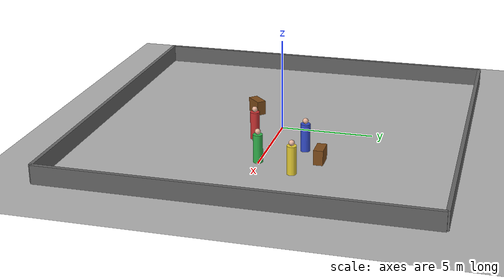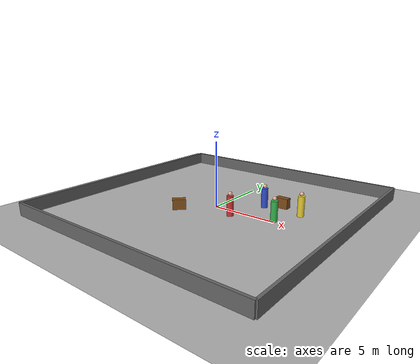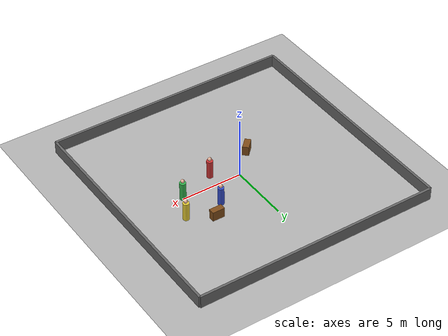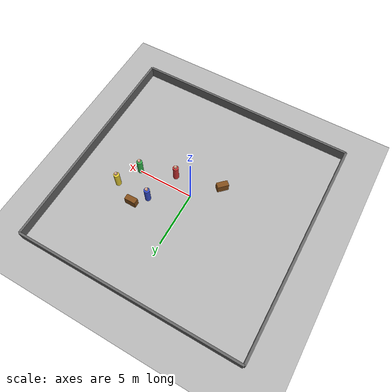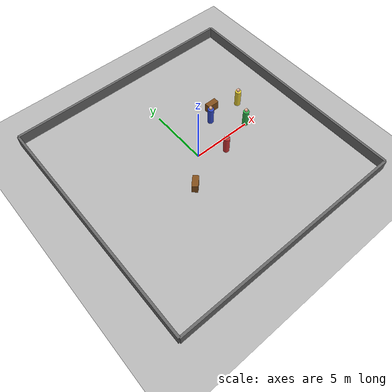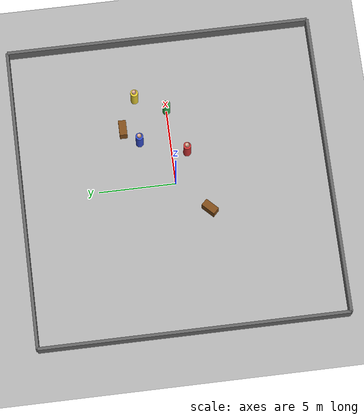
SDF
<?xml version="1.0" ?>
<sdf version="1.8">
  <world name="pedestrian_world">
    <physics name="4ms" type="ignored">
      <max_step_size>0.004</max_step_size>
      <real_time_factor>1.0</real_time_factor>
      <real_time_update_rate>250</real_time_update_rate>
    </physics>

    <plugin filename="gz-sim-physics-system"
            name="gz::sim::systems::Physics"/>
    <plugin filename="gz-sim-user-commands-system"
            name="gz::sim::systems::UserCommands"/>
    <plugin filename="gz-sim-scene-broadcaster-system"
            name="gz::sim::systems::SceneBroadcaster"/>
    <plugin filename="gz-sim-sensors-system"
            name="gz::sim::systems::Sensors"/>

    <!-- Sun -->
    <light type="directional" name="sun">
      <cast_shadows>true</cast_shadows>
      <pose>0 0 10 0 0 0</pose>
      <diffuse>0.8 0.8 0.8 1</diffuse>
      <specular>0.2 0.2 0.2 1</specular>
      <attenuation>
        <range>1000</range>
        <constant>0.9</constant>
        <linear>0.01</linear>
        <quadratic>0.001</quadratic>
      </attenuation>
      <direction>-0.5 0.1 -0.9</direction>
    </light>

    <!-- Ground -->
    <model name="ground_plane">
      <static>true</static>
      <link name="link">
        <collision name="collision">
          <geometry><plane><normal>0 0 1</normal><size>100 100</size></plane></geometry>
        </collision>
        <visual name="visual">
          <geometry><plane><normal>0 0 1</normal><size>100 100</size></plane></geometry>
          <material>
            <ambient>0.7 0.7 0.7 1</ambient>
            <diffuse>0.7 0.7 0.7 1</diffuse>
          </material>
        </visual>
      </link>
    </model>

    <!-- 경계 벽 (20m × 20m)                          -->
    <model name="wall_px">
      <static>true</static>
      <pose>10 0 0.5 0 0 0</pose>
      <link name="link">
        <collision name="c"><geometry><box><size>0.2 20.0 1.0</size></box></geometry></collision>
        <visual name="v"><geometry><box><size>0.2 20.0 1.0</size></box></geometry>
          <material><ambient>0.4 0.4 0.4 1</ambient><diffuse>0.4 0.4 0.4 1</diffuse></material>
        </visual>
      </link>
    </model>
    <model name="wall_mx">
      <static>true</static>
      <pose>-10 0 0.5 0 0 0</pose>
      <link name="link">
        <collision name="c"><geometry><box><size>0.2 20.0 1.0</size></box></geometry></collision>
        <visual name="v"><geometry><box><size>0.2 20.0 1.0</size></box></geometry>
          <material><ambient>0.4 0.4 0.4 1</ambient><diffuse>0.4 0.4 0.4 1</diffuse></material>
        </visual>
      </link>
    </model>
    <model name="wall_py">
      <static>true</static>
      <pose>0 10 0.5 0 0 0</pose>
      <link name="link">
        <collision name="c"><geometry><box><size>20.0 0.2 1.0</size></box></geometry></collision>
        <visual name="v"><geometry><box><size>20.0 0.2 1.0</size></box></geometry>
          <material><ambient>0.4 0.4 0.4 1</ambient><diffuse>0.4 0.4 0.4 1</diffuse></material>
        </visual>
      </link>
    </model>
    <model name="wall_my">
      <static>true</static>
      <pose>0 -10 0.5 0 0 0</pose>
      <link name="link">
        <collision name="c"><geometry><box><size>20.0 0.2 1.0</size></box></geometry></collision>
        <visual name="v"><geometry><box><size>20.0 0.2 1.0</size></box></geometry>
          <material><ambient>0.4 0.4 0.4 1</ambient><diffuse>0.4 0.4 0.4 1</diffuse></material>
        </visual>
      </link>
    </model>

    <!-- 정적 장애물 (벤치 형태)                       -->
    <model name="bench_1">
      <static>true</static>
      <pose>4 3 0.4 0 0 0</pose>
      <link name="link">
        <collision name="c"><geometry><box><size>1.0 0.5 0.8</size></box></geometry></collision>
        <visual name="v"><geometry><box><size>1.0 0.5 0.8</size></box></geometry>
          <material><ambient>0.5 0.3 0.1 1</ambient><diffuse>0.5 0.3 0.1 1</diffuse></material>
        </visual>
      </link>
    </model>

    <model name="bench_2">
      <static>true</static>
      <pose>-2 -2 0.4 0 0 0.785</pose>
      <link name="link">
        <collision name="c"><geometry><box><size>1.0 0.5 0.8</size></box></geometry></collision>
        <visual name="v"><geometry><box><size>1.0 0.5 0.8</size></box></geometry>
          <material><ambient>0.5 0.3 0.1 1</ambient><diffuse>0.5 0.3 0.1 1</diffuse></material>
        </visual>
      </link>
    </model>

    <!-- 보행자 (4명, 사람 형태 원통)                   -->
    <!-- VelocityControl → 외부 스크립트가 cmd_vel     -->

    <!-- 보행자 1: (3,2) Y방향 0.4m/s 왕복 — 파란 옷 -->
    <model name="pedestrian_1">
      <pose>3 2 0.85 0 0 0</pose>
      <link name="link">
        <inertial>
          <mass>70.0</mass>
          <inertia>
            <ixx>5.0</ixx><iyy>5.0</iyy><izz>1.0</izz>
            <ixy>0</ixy><ixz>0</ixz><iyz>0</iyz>
          </inertia>
        </inertial>
        <!-- 몸통 -->
        <collision name="body_col">
          <geometry><cylinder><radius>0.25</radius><length>1.5</length></cylinder></geometry>
        </collision>
        <visual name="body_vis">
          <geometry><cylinder><radius>0.25</radius><length>1.5</length></cylinder></geometry>
          <material><ambient>0.2 0.3 0.8 1</ambient><diffuse>0.2 0.3 0.8 1</diffuse></material>
        </visual>
        <!-- 머리 -->
        <visual name="head_vis">
          <pose>0 0 0.9 0 0 0</pose>
          <geometry><sphere><radius>0.15</radius></sphere></geometry>
          <material><ambient>0.9 0.7 0.6 1</ambient><diffuse>0.9 0.7 0.6 1</diffuse></material>
        </visual>
      </link>
      <plugin filename="gz-sim-velocity-control-system"
              name="gz::sim::systems::VelocityControl"/>
    </model>

    <!-- 보행자 2: (2,-1) X방향 0.6m/s 왕복 — 빨간 옷 -->
    <model name="pedestrian_2">
      <pose>2 -1 0.85 0 0 0</pose>
      <link name="link">
        <inertial>
          <mass>70.0</mass>
          <inertia>
            <ixx>5.0</ixx><iyy>5.0</iyy><izz>1.0</izz>
            <ixy>0</ixy><ixz>0</ixz><iyz>0</iyz>
          </inertia>
        </inertial>
        <collision name="body_col">
          <geometry><cylinder><radius>0.25</radius><length>1.5</length></cylinder></geometry>
        </collision>
        <visual name="body_vis">
          <geometry><cylinder><radius>0.25</radius><length>1.5</length></cylinder></geometry>
          <material><ambient>0.8 0.2 0.2 1</ambient><diffuse>0.8 0.2 0.2 1</diffuse></material>
        </visual>
        <visual name="head_vis">
          <pose>0 0 0.9 0 0 0</pose>
          <geometry><sphere><radius>0.15</radius></sphere></geometry>
          <material><ambient>0.9 0.7 0.6 1</ambient><diffuse>0.9 0.7 0.6 1</diffuse></material>
        </visual>
      </link>
      <plugin filename="gz-sim-velocity-control-system"
              name="gz::sim::systems::VelocityControl"/>
    </model>

    <!-- 보행자 3: (5,0) Y방향 0.8m/s 왕복 — 초록 옷 (빠른 보행자) -->
    <model name="pedestrian_3">
      <pose>5 0 0.85 0 0 0</pose>
      <link name="link">
        <inertial>
          <mass>70.0</mass>
          <inertia>
            <ixx>5.0</ixx><iyy>5.0</iyy><izz>1.0</izz>
            <ixy>0</ixy><ixz>0</ixz><iyz>0</iyz>
          </inertia>
        </inertial>
        <collision name="body_col">
          <geometry><cylinder><radius>0.25</radius><length>1.5</length></cylinder></geometry>
        </collision>
        <visual name="body_vis">
          <geometry><cylinder><radius>0.25</radius><length>1.5</length></cylinder></geometry>
          <material><ambient>0.2 0.7 0.3 1</ambient><diffuse>0.2 0.7 0.3 1</diffuse></material>
        </visual>
        <visual name="head_vis">
          <pose>0 0 0.9 0 0 0</pose>
          <geometry><sphere><radius>0.15</radius></sphere></geometry>
          <material><ambient>0.9 0.7 0.6 1</ambient><diffuse>0.9 0.7 0.6 1</diffuse></material>
        </visual>
      </link>
      <plugin filename="gz-sim-velocity-control-system"
              name="gz::sim::systems::VelocityControl"/>
    </model>

    <!-- 보행자 4: (6,2) X방향 0.5m/s 왕복 — 노란 옷 -->
    <model name="pedestrian_4">
      <pose>6 2 0.85 0 0 0</pose>
      <link name="link">
        <inertial>
          <mass>70.0</mass>
          <inertia>
            <ixx>5.0</ixx><iyy>5.0</iyy><izz>1.0</izz>
            <ixy>0</ixy><ixz>0</ixz><iyz>0</iyz>
          </inertia>
        </inertial>
        <collision name="body_col">
          <geometry><cylinder><radius>0.25</radius><length>1.5</length></cylinder></geometry>
        </collision>
        <visual name="body_vis">
          <geometry><cylinder><radius>0.25</radius><length>1.5</length></cylinder></geometry>
          <material><ambient>0.9 0.8 0.2 1</ambient><diffuse>0.9 0.8 0.2 1</diffuse></material>
        </visual>
        <visual name="head_vis">
          <pose>0 0 0.9 0 0 0</pose>
          <geometry><sphere><radius>0.15</radius></sphere></geometry>
          <material><ambient>0.9 0.7 0.6 1</ambient><diffuse>0.9 0.7 0.6 1</diffuse></material>
        </visual>
      </link>
      <plugin filename="gz-sim-velocity-control-system"
              name="gz::sim::systems::VelocityControl"/>
    </model>

  </world>
</sdf>
